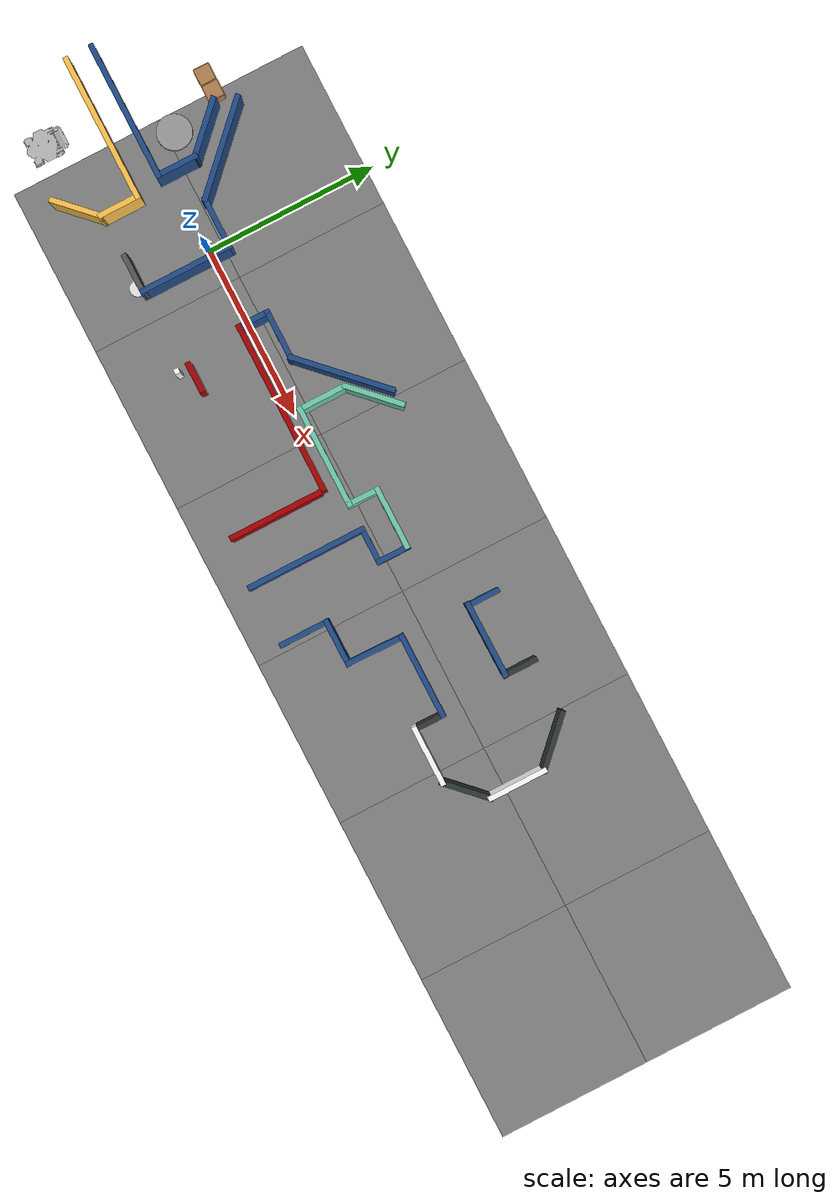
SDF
<sdf version="1.7">
 <world name="default">
  <model name="among_us_world">
   <pose>0.133216 -0.12311 0 0 -0 0</pose>
   <link name="Wall_104">
    <collision name="Wall_104_Collision">
     <geometry><box><size>4 0.15 2.5</size></box></geometry>
     <pose>0 0 1.25 0 -0 0</pose>
    </collision>
    <visual name="Wall_104_Visual">
     <pose>0 0 1.25 0 -0 0</pose>
     <geometry><box><size>4 0.15 2.5</size></box></geometry>
     <material>
      <ambient>0.12549 0.290196 0.529412 1</ambient>
      <diffuse>0.12549 0.290196 0.529412 1</diffuse>
      <specular>0.08 0.08 0.08 1</specular>
      <emissive>0 0 0 1</emissive>
      <pbr><metal><roughness>0.82</roughness><metalness>0</metalness></metal></pbr>
     </material>
     <meta><layer>0</layer></meta>
    </visual>
    <pose>-4.28169 -0.147272 0 0 -0 0</pose>
   </link>
   <link name="Wall_105">
    <collision name="Wall_105_Collision">
     <geometry><box><size>1.25 0.15 2.5</size></box></geometry>
     <pose>0 0 1.25 0 -0 0</pose>
    </collision>
    <visual name="Wall_105_Visual">
     <pose>0 0 1.25 0 -0 0</pose>
     <geometry><box><size>1.25 0.15 2.5</size></box></geometry>
     <material>
      <ambient>0.12549 0.290196 0.529412 1</ambient>
      <diffuse>0.12549 0.290196 0.529412 1</diffuse>
      <specular>0.08 0.08 0.08 1</specular>
      <emissive>0 0 0 1</emissive>
      <pbr><metal><roughness>0.82</roughness><metalness>0</metalness></metal></pbr>
     </material>
     <meta><layer>0</layer></meta>
    </visual>
    <pose>-2.35669 0.402728 0 0 -0 1.5708</pose>
   </link>
   <link name="Wall_106">
    <collision name="Wall_106_Collision">
     <geometry><box><size>1.75 0.15 2.5</size></box></geometry>
     <pose>0 0 1.25 0 -0 0</pose>
    </collision>
    <visual name="Wall_106_Visual">
     <pose>0 0 1.25 0 -0 0</pose>
     <geometry><box><size>1.75 0.15 2.5</size></box></geometry>
     <material>
      <ambient>0.12549 0.290196 0.529412 1</ambient>
      <diffuse>0.12549 0.290196 0.529412 1</diffuse>
      <specular>0.08 0.08 0.08 1</specular>
      <emissive>0 0 0 1</emissive>
      <pbr><metal><roughness>0.82</roughness><metalness>0</metalness></metal></pbr>
     </material>
     <meta><layer>0</layer></meta>
    </visual>
    <pose>-2.92238 1.51841 0 0 -0 2.35619</pose>
   </link>
   <link name="Wall_114">
    <collision name="Wall_114_Collision">
     <geometry><box><size>3 0.15 2.5</size></box></geometry>
     <pose>0 0 1.25 0 -0 0</pose>
    </collision>
    <visual name="Wall_114_Visual">
     <pose>0 0 1.25 0 -0 0</pose>
     <geometry><box><size>3 0.15 2.5</size></box></geometry>
     <material>
      <ambient>0.12549 0.290196 0.529412 1</ambient>
      <diffuse>0.12549 0.290196 0.529412 1</diffuse>
      <specular>0.08 0.08 0.08 1</specular>
      <emissive>0 0 0 1</emissive>
      <pbr><metal><roughness>0.82</roughness><metalness>0</metalness></metal></pbr>
     </material>
     <meta><layer>0</layer></meta>
    </visual>
    <pose>-2.23043 1.67647 0 0 -0 -0.785398</pose>
   </link>
   <link name="Wall_115">
    <collision name="Wall_115_Collision">
     <geometry><box><size>1.5655 0.15 2.5</size></box></geometry>
     <pose>0 0 1.25 0 -0 0</pose>
    </collision>
    <visual name="Wall_115_Visual">
     <pose>0 0 1.25 0 -0 0</pose>
     <geometry><box><size>1.5655 0.15 2.5</size></box></geometry>
     <material>
      <ambient>0.12549 0.290196 0.529412 1</ambient>
      <diffuse>0.12549 0.290196 0.529412 1</diffuse>
      <specular>0.08 0.08 0.08 1</specular>
      <emissive>0 0 0 1</emissive>
      <pbr><metal><roughness>0.82</roughness><metalness>0</metalness></metal></pbr>
     </material>
     <meta><layer>0</layer></meta>
    </visual>
    <pose>-0.515099 0.662156 0 0 -0 -0.00945</pose>
   </link>
   <link name="Wall_116">
    <collision name="Wall_116_Collision">
     <geometry><box><size>2.75 0.15 2.5</size></box></geometry>
     <pose>0 0 1.25 0 -0 0</pose>
    </collision>
    <visual name="Wall_116_Visual">
     <pose>0 0 1.25 0 -0 0</pose>
     <geometry><box><size>2.75 0.15 2.5</size></box></geometry>
     <material>
      <ambient>0.12549 0.290196 0.529412 1</ambient>
      <diffuse>0.12549 0.290196 0.529412 1</diffuse>
      <specular>0.08 0.08 0.08 1</specular>
      <emissive>0 0 0 1</emissive>
      <pbr><metal><roughness>0.82</roughness><metalness>0</metalness></metal></pbr>
     </material>
     <meta><layer>0</layer></meta>
    </visual>
    <pose>0.19261 -0.637844 0 0 -0 -1.5708</pose>
   </link>
   <link name="Wall_128">
    <collision name="Wall_128_Collision">
     <geometry><box><size>1.75 0.15 2.5</size></box></geometry>
     <pose>0 0 1.25 0 -0 0</pose>
    </collision>
    <visual name="Wall_128_Visual">
     <pose>0 0 1.25 0 -0 0</pose>
     <geometry><box><size>1.75 0.15 2.5</size></box></geometry>
     <material>
      <ambient>0.435294 0.796078 0.67451 1</ambient>
      <diffuse>0.435294 0.796078 0.67451 1</diffuse>
      <specular>0.08 0.08 0.08 1</specular>
      <emissive>0 0 0 1</emissive>
      <pbr><metal><roughness>0.82</roughness><metalness>0</metalness></metal></pbr>
     </material>
     <meta><layer>0</layer></meta>
    </visual>
    <pose>5.47138 2.24804 0 0 -0 -2.35619</pose>
   </link>
   <link name="Wall_129">
    <collision name="Wall_129_Collision">
     <geometry><box><size>1.5 0.15 2.5</size></box></geometry>
     <pose>0 0 1.25 0 -0 0</pose>
    </collision>
    <visual name="Wall_129_Visual">
     <pose>0 0 1.25 0 -0 0</pose>
     <geometry><box><size>1.5 0.15 2.5</size></box></geometry>
     <material>
      <ambient>0.435294 0.796078 0.67451 1</ambient>
      <diffuse>0.435294 0.796078 0.67451 1</diffuse>
      <specular>0.08 0.08 0.08 1</specular>
      <emissive>0 0 0 1</emissive>
      <pbr><metal><roughness>0.82</roughness><metalness>0</metalness></metal></pbr>
     </material>
     <meta><layer>0</layer></meta>
    </visual>
    <pose>4.9057 1.00735 0 0 -0 -1.5708</pose>
   </link>
   <link name="Wall_13">
    <collision name="Wall_13_Collision">
     <geometry><box><size>0.99953 0.15 2.5</size></box></geometry>
     <pose>0 0 1.25 0 -0 0</pose>
    </collision>
    <visual name="Wall_13_Visual">
     <pose>0 0 1.25 0 -0 0</pose>
     <geometry><box><size>0.99953 0.15 2.5</size></box></geometry>
     <material>
      <ambient>0.12549 0.290196 0.529412 1</ambient>
      <diffuse>0.12549 0.290196 0.529412 1</diffuse>
      <specular>0.08 0.08 0.08 1</specular>
      <emissive>0 0 0 1</emissive>
      <pbr><metal><roughness>0.82</roughness><metalness>0</metalness></metal></pbr>
     </material>
     <meta><layer>0</layer></meta>
    </visual>
    <pose>11.6124 2.34037 0 0 -0 -1.5708</pose>
   </link>
   <link name="Wall_130">
    <collision name="Wall_130_Collision">
     <geometry><box><size>3 0.15 2.5</size></box></geometry>
     <pose>0 0 1.25 0 -0 0</pose>
    </collision>
    <visual name="Wall_130_Visual">
     <pose>0 0 1.25 0 -0 0</pose>
     <geometry><box><size>3 0.15 2.5</size></box></geometry>
     <material>
      <ambient>0.435294 0.796078 0.67451 1</ambient>
      <diffuse>0.435294 0.796078 0.67451 1</diffuse>
      <specular>0.08 0.08 0.08 1</specular>
      <emissive>0 0 0 1</emissive>
      <pbr><metal><roughness>0.82</roughness><metalness>0</metalness></metal></pbr>
     </material>
     <meta><layer>0</layer></meta>
    </visual>
    <pose>6.3307 0.332351 0 0 -0 0</pose>
   </link>
   <link name="Wall_131">
    <collision name="Wall_131_Collision">
     <geometry><box><size>1 0.15 2.5</size></box></geometry>
     <pose>0 0 1.25 0 -0 0</pose>
    </collision>
    <visual name="Wall_131_Visual">
     <pose>0 0 1.25 0 -0 0</pose>
     <geometry><box><size>1 0.15 2.5</size></box></geometry>
     <material>
      <ambient>0.435294 0.796078 0.67451 1</ambient>
      <diffuse>0.435294 0.796078 0.67451 1</diffuse>
      <specular>0.08 0.08 0.08 1</specular>
      <emissive>0 0 0 1</emissive>
      <pbr><metal><roughness>0.82</roughness><metalness>0</metalness></metal></pbr>
     </material>
     <meta><layer>0</layer></meta>
    </visual>
    <pose>7.7557 0.757351 0 0 -0 1.5708</pose>
   </link>
   <link name="Wall_132">
    <collision name="Wall_132_Collision">
     <geometry><box><size>1.85593 0.15 2.5</size></box></geometry>
     <pose>0 0 1.25 0 -0 0</pose>
    </collision>
    <visual name="Wall_132_Visual">
     <pose>0 0 1.25 0 -0 0</pose>
     <geometry><box><size>1.85593 0.15 2.5</size></box></geometry>
     <material>
      <ambient>0.435294 0.796078 0.67451 1</ambient>
      <diffuse>0.435294 0.796078 0.67451 1</diffuse>
      <specular>0.08 0.08 0.08 1</specular>
      <emissive>0 0 0 1</emissive>
      <pbr><metal><roughness>0.82</roughness><metalness>0</metalness></metal></pbr>
     </material>
     <meta><layer>0</layer></meta>
    </visual>
    <pose>8.60867 1.18235 0 0 -0 0</pose>
   </link>
   <link name="Wall_133">
    <collision name="Wall_133_Collision">
     <geometry><box><size>1 0.15 2.5</size></box></geometry>
     <pose>0 0 1.25 0 -0 0</pose>
    </collision>
    <visual name="Wall_133_Visual">
     <pose>0 0 1.25 0 -0 0</pose>
     <geometry><box><size>1 0.15 2.5</size></box></geometry>
     <material>
      <ambient>0.12549 0.290196 0.529412 1</ambient>
      <diffuse>0.12549 0.290196 0.529412 1</diffuse>
      <specular>0.08 0.08 0.08 1</specular>
      <emissive>0 0 0 1</emissive>
      <pbr><metal><roughness>0.82</roughness><metalness>0</metalness></metal></pbr>
     </material>
     <meta><layer>0</layer></meta>
    </visual>
    <pose>9.47952 0.757351 0 0 -0 -1.5708</pose>
   </link>
   <link name="Wall_134">
    <collision name="Wall_134_Collision">
     <geometry><box><size>1.10593 0.15 2.5</size></box></geometry>
     <pose>0 0 1.25 0 -0 0</pose>
    </collision>
    <visual name="Wall_134_Visual">
     <pose>0 0 1.25 0 -0 0</pose>
     <geometry><box><size>1.10593 0.15 2.5</size></box></geometry>
     <material>
      <ambient>0.12549 0.290196 0.529412 1</ambient>
      <diffuse>0.12549 0.290196 0.529412 1</diffuse>
      <specular>0.08 0.08 0.08 1</specular>
      <emissive>0 0 0 1</emissive>
      <pbr><metal><roughness>0.82</roughness><metalness>0</metalness></metal></pbr>
     </material>
     <meta><layer>0</layer></meta>
    </visual>
    <pose>8.98367 0.332351 0 0 -0 3.14159</pose>
   </link>
   <link name="Wall_135">
    <collision name="Wall_135_Collision">
     <geometry><box><size>3.5 0.15 2.5</size></box></geometry>
     <pose>0 0 1.25 0 -0 0</pose>
    </collision>
    <visual name="Wall_135_Visual">
     <pose>0 0 1.25 0 -0 0</pose>
     <geometry><box><size>3.5 0.15 2.5</size></box></geometry>
     <material>
      <ambient>0.12549 0.290196 0.529412 1</ambient>
      <diffuse>0.12549 0.290196 0.529412 1</diffuse>
      <specular>0.08 0.08 0.08 1</specular>
      <emissive>0 0 0 1</emissive>
      <pbr><metal><roughness>0.82</roughness><metalness>0</metalness></metal></pbr>
     </material>
     <meta><layer>0</layer></meta>
    </visual>
    <pose>8.5057 -1.34265 0 0 -0 -1.5708</pose>
   </link>
   <link name="Wall_14">
    <collision name="Wall_14_Collision">
     <geometry><box><size>2.25007 0.15 2.5</size></box></geometry>
     <pose>0 0 1.25 0 -0 0</pose>
    </collision>
    <visual name="Wall_14_Visual">
     <pose>0 0 1.25 0 -0 0</pose>
     <geometry><box><size>2.25007 0.15 2.5</size></box></geometry>
     <material>
      <ambient>0.12549 0.290196 0.529412 1</ambient>
      <diffuse>0.12549 0.290196 0.529412 1</diffuse>
      <specular>0.08 0.08 0.08 1</specular>
      <emissive>0 0 0 1</emissive>
      <pbr><metal><roughness>0.82</roughness><metalness>0</metalness></metal></pbr>
     </material>
     <meta><layer>0</layer></meta>
    </visual>
    <pose>12.6445 1.92431 0 0 -0 0.008281</pose>
   </link>
   <link name="Wall_146">
    <collision name="Wall_146_Collision">
     <geometry><box><size>4.25 0.15 2.5</size></box></geometry>
     <pose>0 0 1.25 0 -0 0</pose>
    </collision>
    <visual name="Wall_146_Visual">
     <pose>0 0 1.25 0 -0 0</pose>
     <geometry><box><size>4.25 0.15 2.5</size></box></geometry>
     <material>
      <ambient>1 0.764706 0.305882 1</ambient>
      <diffuse>1 0.764706 0.305882 1</diffuse>
      <specular>0.08 0.08 0.08 1</specular>
      <emissive>0 0 0 1</emissive>
      <pbr><metal><roughness>0.82</roughness><metalness>0</metalness></metal></pbr>
     </material>
     <meta><layer>0</layer></meta>
    </visual>
    <pose>-4.16277 -0.905283 0 0 -0 0</pose>
   </link>
   <link name="Wall_147">
    <collision name="Wall_147_Collision">
     <geometry><box><size>1.25 0.15 2.5</size></box></geometry>
     <pose>0 0 1.25 0 -0 0</pose>
    </collision>
    <visual name="Wall_147_Visual">
     <pose>0 0 1.25 0 -0 0</pose>
     <geometry><box><size>1.25 0.15 2.5</size></box></geometry>
     <material>
      <ambient>1 0.764706 0.305882 1</ambient>
      <diffuse>1 0.764706 0.305882 1</diffuse>
      <specular>0.08 0.08 0.08 1</specular>
      <emissive>0 0 0 1</emissive>
      <pbr><metal><roughness>0.82</roughness><metalness>0</metalness></metal></pbr>
     </material>
     <meta><layer>0</layer></meta>
    </visual>
    <pose>-2.11277 -1.45528 0 0 -0 -1.5708</pose>
   </link>
   <link name="Wall_148">
    <collision name="Wall_148_Collision">
     <geometry><box><size>1.5 0.15 2.5</size></box></geometry>
     <pose>0 0 1.25 0 -0 0</pose>
    </collision>
    <visual name="Wall_148_Visual">
     <pose>0 0 1.25 0 -0 0</pose>
     <geometry><box><size>1.5 0.15 2.5</size></box></geometry>
     <material>
      <ambient>1 0.764706 0.305882 1</ambient>
      <diffuse>1 0.764706 0.305882 1</diffuse>
      <specular>0.08 0.08 0.08 1</specular>
      <emissive>0 0 0 1</emissive>
      <pbr><metal><roughness>0.82</roughness><metalness>0</metalness></metal></pbr>
     </material>
     <meta><layer>0</layer></meta>
    </visual>
    <pose>-2.59027 -2.48228 0 0 -0 -2.35672</pose>
   </link>
   <link name="Wall_15">
    <collision name="Wall_15_Collision">
     <geometry><box><size>1.02562 0.15 2.5</size></box></geometry>
     <pose>0 0 1.25 0 -0 0</pose>
    </collision>
    <visual name="Wall_15_Visual">
     <pose>0 0 1.25 0 -0 0</pose>
     <geometry><box><size>1.02562 0.15 2.5</size></box></geometry>
     <material>
      <ambient>0.180392 0.203922 0.211765 1</ambient>
      <diffuse>0.180392 0.203922 0.211765 1</diffuse>
      <specular>0.08 0.08 0.08 1</specular>
      <emissive>0 0 0 1</emissive>
      <pbr><metal><roughness>0.82</roughness><metalness>0</metalness></metal></pbr>
     </material>
     <meta><layer>0</layer></meta>
    </visual>
    <pose>13.7124 2.37081 0 0 -0 1.5708</pose>
   </link>
   <link name="Wall_180">
    <collision name="Wall_180_Collision">
     <geometry><box><size>3 0.15 2.5</size></box></geometry>
     <pose>0 0 1.25 0 -0 0</pose>
    </collision>
    <visual name="Wall_180_Visual">
     <pose>0 0 1.25 0 -0 0</pose>
     <geometry><box><size>3 0.15 2.5</size></box></geometry>
     <material>
      <ambient>0.12549 0.290196 0.529412 1</ambient>
      <diffuse>0.12549 0.290196 0.529412 1</diffuse>
      <specular>0.08 0.08 0.08 1</specular>
      <emissive>0 0 0 1</emissive>
      <pbr><metal><roughness>0.82</roughness><metalness>0</metalness></metal></pbr>
     </material>
     <meta><layer>0</layer></meta>
    </visual>
    <pose>4.57485 1.76069 0 0 -0 -2.35619</pose>
   </link>
   <link name="Wall_183">
    <collision name="Wall_183_Collision">
     <geometry><box><size>1.5 0.15 2.5</size></box></geometry>
     <pose>0 0 1.25 0 -0 0</pose>
    </collision>
    <visual name="Wall_183_Visual">
     <pose>0 0 1.25 0 -0 0</pose>
     <geometry><box><size>1.5 0.15 2.5</size></box></geometry>
     <material>
      <ambient>0.12549 0.290196 0.529412 1</ambient>
      <diffuse>0.12549 0.290196 0.529412 1</diffuse>
      <specular>0.08 0.08 0.08 1</specular>
      <emissive>0 0 0 1</emissive>
      <pbr><metal><roughness>0.82</roughness><metalness>0</metalness></metal></pbr>
     </material>
     <meta><layer>0</layer></meta>
    </visual>
    <pose>2.89222 0.753062 0 0 -0 3.14159</pose>
   </link>
   <link name="Wall_184">
    <collision name="Wall_184_Collision">
     <geometry><box><size>1 0.15 2.5</size></box></geometry>
     <pose>0 0 1.25 0 -0 0</pose>
    </collision>
    <visual name="Wall_184_Visual">
     <pose>0 0 1.25 0 -0 0</pose>
     <geometry><box><size>1 0.15 2.5</size></box></geometry>
     <material>
      <ambient>0.12549 0.290196 0.529412 1</ambient>
      <diffuse>0.12549 0.290196 0.529412 1</diffuse>
      <specular>0.08 0.08 0.08 1</specular>
      <emissive>0 0 0 1</emissive>
      <pbr><metal><roughness>0.82</roughness><metalness>0</metalness></metal></pbr>
     </material>
     <meta><layer>0</layer></meta>
    </visual>
    <pose>2.21722 0.328062 0 0 -0 -1.5708</pose>
   </link>
   <link name="Wall_185">
    <collision name="Wall_185_Collision">
     <geometry><box><size>5 0.15 2.5</size></box></geometry>
     <pose>0 0 1.25 0 -0 0</pose>
    </collision>
    <visual name="Wall_185_Visual">
     <pose>0 0 1.25 0 -0 0</pose>
     <geometry><box><size>5 0.15 2.5</size></box></geometry>
     <material>
      <ambient>0.643137 0 0 1</ambient>
      <diffuse>0.643137 0 0 1</diffuse>
      <specular>0.08 0.08 0.08 1</specular>
      <emissive>0 0 0 1</emissive>
      <pbr><metal><roughness>0.82</roughness><metalness>0</metalness></metal></pbr>
     </material>
     <meta><layer>0</layer></meta>
    </visual>
    <pose>4.64222 -0.096938 0 0 -0 0</pose>
   </link>
   <link name="Wall_189">
    <collision name="Wall_189_Collision">
     <geometry><box><size>0.892418 0.15 2.5</size></box></geometry>
     <pose>0 0 1.25 0 -0 0</pose>
    </collision>
    <visual name="Wall_189_Visual">
     <pose>0 0 1.25 0 -0 0</pose>
     <geometry><box><size>0.892418 0.15 2.5</size></box></geometry>
     <material>
      <ambient>0.643137 0 0 1</ambient>
      <diffuse>0.643137 0 0 1</diffuse>
      <specular>0.08 0.08 0.08 1</specular>
      <emissive>0 0 0 1</emissive>
      <pbr><metal><roughness>0.82</roughness><metalness>0</metalness></metal></pbr>
     </material>
     <meta><layer>0</layer></meta>
    </visual>
    <pose>2.86737 -1.75991 0 0 -0 -0.009059</pose>
   </link>
   <link name="Wall_193">
    <collision name="Wall_193_Collision">
     <geometry><box><size>2.75 0.15 2.5</size></box></geometry>
     <pose>0 0 1.25 0 -0 0</pose>
    </collision>
    <visual name="Wall_193_Visual">
     <pose>0 0 1.25 0 -0 0</pose>
     <geometry><box><size>2.75 0.15 2.5</size></box></geometry>
     <material>
      <ambient>0.643137 0 0 1</ambient>
      <diffuse>0.643137 0 0 1</diffuse>
      <specular>0.08 0.08 0.08 1</specular>
      <emissive>0 0 0 1</emissive>
      <pbr><metal><roughness>0.82</roughness><metalness>0</metalness></metal></pbr>
     </material>
     <meta><layer>0</layer></meta>
    </visual>
    <pose>7.11638 -1.53545 0 0 -0 1.5708</pose>
   </link>
   <link name="Wall_20">
    <collision name="Wall_20_Collision">
     <geometry><box><size>1.75 0.15 2.5</size></box></geometry>
     <pose>0 0 1.25 0 -0 0</pose>
    </collision>
    <visual name="Wall_20_Visual">
     <pose>0 0 1.25 0 -0 0</pose>
     <geometry><box><size>1.75 0.15 2.5</size></box></geometry>
     <material>
      <ambient>0.180392 0.203922 0.211765 1</ambient>
      <diffuse>0.180392 0.203922 0.211765 1</diffuse>
      <specular>0.08 0.08 0.08 1</specular>
      <emissive>0 0 0 1</emissive>
      <pbr><metal><roughness>0.82</roughness><metalness>0</metalness></metal></pbr>
     </material>
     <meta><layer>0</layer></meta>
    </visual>
    <pose>15.8781 2.24293 0 0 -0 -0.785398</pose>
   </link>
   <link name="Wall_204">
    <collision name="Wall_204_Collision">
     <geometry><box><size>1.18966 0.15 2.5</size></box></geometry>
     <pose>0 0 1.25 0 -0 0</pose>
    </collision>
    <visual name="Wall_204_Visual">
     <pose>0 0 1.25 0 -0 0</pose>
     <geometry><box><size>1.18966 0.15 2.5</size></box></geometry>
     <material>
      <ambient>0.333333 0.341176 0.32549 1</ambient>
      <diffuse>0.333333 0.341176 0.32549 1</diffuse>
      <specular>0.08 0.08 0.08 1</specular>
      <emissive>0 0 0 1</emissive>
      <pbr><metal><roughness>0.82</roughness><metalness>0</metalness></metal></pbr>
     </material>
     <meta><layer>0</layer></meta>
    </visual>
    <pose>-0.32722 -1.93701 0 0 -0 3.14</pose>
   </link>
   <link name="Wall_21">
    <collision name="Wall_21_Collision">
     <geometry><box><size>1.75 0.15 2.5</size></box></geometry>
     <pose>0 0 1.25 0 -0 0</pose>
    </collision>
    <visual name="Wall_21_Visual">
     <pose>0 0 1.25 0 -0 0</pose>
     <geometry><box><size>1.75 0.15 2.5</size></box></geometry>
     <material>
      <ambient>1 1 1 1</ambient>
      <diffuse>1 1 1 1</diffuse>
      <specular>0.08 0.08 0.08 1</specular>
      <emissive>0 0 0 1</emissive>
      <pbr><metal><roughness>0.82</roughness><metalness>0</metalness></metal></pbr>
     </material>
     <meta><layer>0</layer></meta>
    </visual>
    <pose>16.4438 0.877247 0 0 -0 -1.5708</pose>
   </link>
   <link name="Wall_211">
    <collision name="Wall_211_Collision">
     <geometry><box><size>0.15 0.15 2.5</size></box></geometry>
     <pose>0 0 1.25 0 -0 0</pose>
    </collision>
    <visual name="Wall_211_Visual">
     <pose>0 0 1.25 0 -0 0</pose>
     <geometry><box><size>0.15 0.15 2.5</size></box></geometry>
     <material>
      <ambient>1 1 1 1</ambient>
      <diffuse>1 1 1 1</diffuse>
      <specular>0.08 0.08 0.08 1</specular>
      <emissive>0 0 0 1</emissive>
      <pbr><metal><roughness>0.82</roughness><metalness>0</metalness></metal></pbr>
     </material>
     <meta><layer>0</layer></meta>
    </visual>
    <pose>2.50201 -2.11327 0 0 -0 0</pose>
   </link>
   <link name="Wall_22">
    <collision name="Wall_22_Collision">
     <geometry><box><size>1.5 0.15 2.5</size></box></geometry>
     <pose>0 0 1.25 0 -0 0</pose>
    </collision>
    <visual name="Wall_22_Visual">
     <pose>0 0 1.25 0 -0 0</pose>
     <geometry><box><size>1.5 0.15 2.5</size></box></geometry>
     <material>
      <ambient>0.180392 0.203922 0.211765 1</ambient>
      <diffuse>0.180392 0.203922 0.211765 1</diffuse>
      <specular>0.08 0.08 0.08 1</specular>
      <emissive>0 0 0 1</emissive>
      <pbr><metal><roughness>0.82</roughness><metalness>0</metalness></metal></pbr>
     </material>
     <meta><layer>0</layer></meta>
    </visual>
    <pose>15.9665 -0.40005 0 0 -0 -2.35619</pose>
   </link>
   <link name="Wall_23">
    <collision name="Wall_23_Collision">
     <geometry><box><size>1.75 0.15 2.5</size></box></geometry>
     <pose>0 0 1.25 0 -0 0</pose>
    </collision>
    <visual name="Wall_23_Visual">
     <pose>0 0 1.25 0 -0 0</pose>
     <geometry><box><size>1.75 0.15 2.5</size></box></geometry>
     <material>
      <ambient>1 1 1 1</ambient>
      <diffuse>1 1 1 1</diffuse>
      <specular>0.08 0.08 0.08 1</specular>
      <emissive>0 0 0 1</emissive>
      <pbr><metal><roughness>0.82</roughness><metalness>0</metalness></metal></pbr>
     </material>
     <meta><layer>0</layer></meta>
    </visual>
    <pose>14.6892 -0.877347 0 0 -0 3.14159</pose>
   </link>
   <link name="Wall_24">
    <collision name="Wall_24_Collision">
     <geometry><box><size>0.963748 0.15 2.5</size></box></geometry>
     <pose>0 0 1.25 0 -0 0</pose>
    </collision>
    <visual name="Wall_24_Visual">
     <pose>0 0 1.25 0 -0 0</pose>
     <geometry><box><size>0.963748 0.15 2.5</size></box></geometry>
     <material>
      <ambient>0.180392 0.203922 0.211765 1</ambient>
      <diffuse>0.180392 0.203922 0.211765 1</diffuse>
      <specular>0.08 0.08 0.08 1</specular>
      <emissive>0 0 0 1</emissive>
      <pbr><metal><roughness>0.82</roughness><metalness>0</metalness></metal></pbr>
     </material>
     <meta><layer>0</layer></meta>
    </visual>
    <pose>13.8892 -0.470473 0 0 -0 1.5708</pose>
   </link>
   <link name="Wall_25">
    <collision name="Wall_25_Collision">
     <geometry><box><size>2.5 0.15 2.5</size></box></geometry>
     <pose>0 0 1.25 0 -0 0</pose>
    </collision>
    <visual name="Wall_25_Visual">
     <pose>0 0 1.25 0 -0 0</pose>
     <geometry><box><size>2.5 0.15 2.5</size></box></geometry>
     <material>
      <ambient>0.12549 0.290196 0.529412 1</ambient>
      <diffuse>0.12549 0.290196 0.529412 1</diffuse>
      <specular>0.08 0.08 0.08 1</specular>
      <emissive>0 0 0 1</emissive>
      <pbr><metal><roughness>0.82</roughness><metalness>0</metalness></metal></pbr>
     </material>
     <meta><layer>0</layer></meta>
    </visual>
    <pose>12.7142 -0.045708 0 0 -0 3.14159</pose>
   </link>
   <link name="Wall_26">
    <collision name="Wall_26_Collision">
     <geometry><box><size>1.73416 0.15 2.5</size></box></geometry>
     <pose>0 0 1.25 0 -0 0</pose>
    </collision>
    <visual name="Wall_26_Visual">
     <pose>0 0 1.25 0 -0 0</pose>
     <geometry><box><size>1.73416 0.15 2.5</size></box></geometry>
     <material>
      <ambient>0.12549 0.290196 0.529412 1</ambient>
      <diffuse>0.12549 0.290196 0.529412 1</diffuse>
      <specular>0.08 0.08 0.08 1</specular>
      <emissive>0 0 0 1</emissive>
      <pbr><metal><roughness>0.82</roughness><metalness>0</metalness></metal></pbr>
     </material>
     <meta><layer>0</layer></meta>
    </visual>
    <pose>11.5256 -0.855562 0 0 -0 -1.58788</pose>
   </link>
   <link name="Wall_27">
    <collision name="Wall_27_Collision">
     <geometry><box><size>1.40477 0.15 2.5</size></box></geometry>
     <pose>0 0 1.25 0 -0 0</pose>
    </collision>
    <visual name="Wall_27_Visual">
     <pose>0 0 1.25 0 -0 0</pose>
     <geometry><box><size>1.40477 0.15 2.5</size></box></geometry>
     <material>
      <ambient>0.12549 0.290196 0.529412 1</ambient>
      <diffuse>0.12549 0.290196 0.529412 1</diffuse>
      <specular>0.08 0.08 0.08 1</specular>
      <emissive>0 0 0 1</emissive>
      <pbr><metal><roughness>0.82</roughness><metalness>0</metalness></metal></pbr>
     </material>
     <meta><layer>0</layer></meta>
    </visual>
    <pose>10.8914 -1.64752 0 0 -0 3.14159</pose>
   </link>
   <link name="Wall_89">
    <collision name="Wall_89_Collision">
     <geometry><box><size>1.47984 0.15 2.5</size></box></geometry>
     <pose>0 0 1.25 0 -0 0</pose>
    </collision>
    <visual name="Wall_89_Visual">
     <pose>0 0 1.25 0 -0 0</pose>
     <geometry><box><size>1.47984 0.15 2.5</size></box></geometry>
     <material>
      <ambient>0.12549 0.290196 0.529412 1</ambient>
      <diffuse>0.12549 0.290196 0.529412 1</diffuse>
      <specular>0.08 0.08 0.08 1</specular>
      <emissive>0 0 0 1</emissive>
      <pbr><metal><roughness>0.82</roughness><metalness>0</metalness></metal></pbr>
     </material>
     <meta><layer>0</layer></meta>
    </visual>
    <pose>10.2573 -2.31244 0 0 -0 -1.5708</pose>
   </link>
   <static>1</static>
  </model>
  <model name="mars_rover">
   <static>1</static>
   <link name="link">
    <collision name="solar_panel_collision">
     <pose>0 -0.06945 0.47293 0 -0 0</pose>
     <geometry><box><size>0.87974 0.8821 0.02602</size></box></geometry>
    </collision>
    <collision name="chassis_collision">
     <pose>0 -0.05 0.31475 0 -0 0</pose>
     <geometry><box><size>0.49522 0.67401 0.28915</size></box></geometry>
    </collision>
    <collision name="rear_left_bumper_collision">
     <pose>0.30107 0.3835 0.38976 0 -0 0</pose>
     <geometry><box><size>0.04442 0.38897 0.07918</size></box></geometry>
    </collision>
    <collision name="rear_right_bumper_collision">
     <pose>-0.30107 0.3835 0.38976 0 -0 0</pose>
     <geometry><box><size>0.04442 0.38897 0.07918</size></box></geometry>
    </collision>
    <collision name="rear_bumper_collision">
     <pose>0 0.59414 0.38976 0 -0 0</pose>
     <geometry><box><size>0.56656 0.04442 0.07918</size></box></geometry>
    </collision>
    <collision name="bin_back_panel_collision">
     <pose>0 0.47 0.32114 0.69137 -0 0</pose>
     <geometry><box><size>0.43774 0.212366 0.05173</size></box></geometry>
    </collision>
    <collision name="bin_left_panel_collision1">
     <pose>0.22615 0.32897 0.33193 0 -0 0</pose>
     <geometry><box><size>0.01116 0.19338 0.16304</size></box></geometry>
    </collision>
    <collision name="bin_left_panel_collision2">
     <pose>0.22615 0.471 0.39308 0 -0 0</pose>
     <geometry><box><size>0.01116 0.15 0.04</size></box></geometry>
    </collision>
    <collision name="bin_left_panel_collision3">
     <pose>0.22615 0.45 0.35308 0 -0 0</pose>
     <geometry><box><size>0.01116 0.15 0.04</size></box></geometry>
    </collision>
    <collision name="bin_left_panel_collision4">
     <pose>0.22615 0.39308 0.31308 0 -0 0</pose>
     <geometry><box><size>0.01116 0.15 0.04</size></box></geometry>
    </collision>
    <collision name="bin_right_panel_collision1">
     <pose>-0.22615 0.32897 0.33193 0 -0 0</pose>
     <geometry><box><size>0.01116 0.19338 0.16304</size></box></geometry>
    </collision>
    <collision name="bin_right_panel_collision2">
     <pose>-0.22615 0.471 0.39308 0 -0 0</pose>
     <geometry><box><size>0.01116 0.15 0.04</size></box></geometry>
    </collision>
    <collision name="bin_right_panel_collision3">
     <pose>-0.22615 0.45 0.35308 0 -0 0</pose>
     <geometry><box><size>0.01116 0.15 0.04</size></box></geometry>
    </collision>
    <collision name="bin_right_panel_collision4">
     <pose>-0.22615 0.39308 0.31308 0 -0 0</pose>
     <geometry><box><size>0.01116 0.15 0.04</size></box></geometry>
    </collision>
    <collision name="bin_front_panel_collision">
     <pose>0 0.30047 0.32114 2.26207 -0 0</pose>
     <geometry><box><size>0.43774 0.212366 0.05173</size></box></geometry>
    </collision>
    <collision name="front_left_wheel_collision">
     <pose>0.31103 -0.32115 0.1358 1.5707 0 1.5707</pose>
     <geometry><cylinder><radius>0.1358</radius><length>0.1641</length></cylinder></geometry>
    </collision>
    <collision name="front_right_wheel_collision">
     <pose>-0.31103 -0.32115 0.1358 1.5707 0 1.5707</pose>
     <geometry><cylinder><radius>0.1358</radius><length>0.1641</length></cylinder></geometry>
    </collision>
    <collision name="rear_left_wheel_collision">
     <pose>0.31103 0.28049 0.1358 1.5707 0 1.5707</pose>
     <geometry><cylinder><radius>0.1358</radius><length>0.1641</length></cylinder></geometry>
    </collision>
    <collision name="rear_right_wheel_collision">
     <pose>-0.31103 0.28049 0.1358 1.5707 0 1.5707</pose>
     <geometry><cylinder><radius>0.1358</radius><length>0.1641</length></cylinder></geometry>
    </collision>
    <visual name="visual">
     <geometry><mesh><uri>model://mars_rover/meshes/rover.dae</uri></mesh></geometry>
    </visual>
   </link>
   <pose>-4.55317 -2.65606 0 0 -0 0</pose>
  </model>
  <model name="asphalt_tile_03_04">
   <static>1</static>
   <pose>-1.400 -1.800 -0.020 0 -0 0</pose>
   <link name="link">
    <collision name="collision"><geometry><box><size>4.800 4.400 0.040</size></box></geometry></collision>
    <visual name="visual">
     <cast_shadows>0</cast_shadows>
     <geometry><box><size>4.800 4.400 0.040</size></box></geometry>
     <material>
      <ambient>0.5 0.5 0.5 1</ambient>
      <diffuse>0.5 0.5 0.5 1</diffuse>
      <specular>0.2 0.2 0.2 1</specular>
      <emissive>0 0 0 1</emissive>
      <pbr>
       <metal>
        <albedo_map>model://asphalt_plane/materials/textures/tarmac.png</albedo_map>
        <roughness>0.85</roughness>
        <metalness>0</metalness>
       </metal>
      </pbr>
     </material>
    </visual>
   </link>
  </model>
  <model name="asphalt_tile_03_05">
   <static>1</static>
   <pose>3.400 -1.800 -0.020 0 -0 0</pose>
   <link name="link">
    <collision name="collision"><geometry><box><size>4.800 4.400 0.040</size></box></geometry></collision>
    <visual name="visual">
     <cast_shadows>0</cast_shadows>
     <geometry><box><size>4.800 4.400 0.040</size></box></geometry>
     <material>
      <ambient>0.5 0.5 0.5 1</ambient>
      <diffuse>0.5 0.5 0.5 1</diffuse>
      <specular>0.2 0.2 0.2 1</specular>
      <emissive>0 0 0 1</emissive>
      <pbr>
       <metal>
        <albedo_map>model://asphalt_plane/materials/textures/tarmac.png</albedo_map>
        <roughness>0.85</roughness>
        <metalness>0</metalness>
       </metal>
      </pbr>
     </material>
    </visual>
   </link>
  </model>
  <model name="asphalt_tile_03_06">
   <static>1</static>
   <pose>8.200 -1.800 -0.020 0 -0 0</pose>
   <link name="link">
    <collision name="collision"><geometry><box><size>4.800 4.400 0.040</size></box></geometry></collision>
    <visual name="visual">
     <cast_shadows>0</cast_shadows>
     <geometry><box><size>4.800 4.400 0.040</size></box></geometry>
     <material>
      <ambient>0.5 0.5 0.5 1</ambient>
      <diffuse>0.5 0.5 0.5 1</diffuse>
      <specular>0.2 0.2 0.2 1</specular>
      <emissive>0 0 0 1</emissive>
      <pbr>
       <metal>
        <albedo_map>model://asphalt_plane/materials/textures/tarmac.png</albedo_map>
        <roughness>0.85</roughness>
        <metalness>0</metalness>
       </metal>
      </pbr>
     </material>
    </visual>
   </link>
  </model>
  <model name="asphalt_tile_03_07">
   <static>1</static>
   <pose>13.000 -1.800 -0.020 0 -0 0</pose>
   <link name="link">
    <collision name="collision"><geometry><box><size>4.800 4.400 0.040</size></box></geometry></collision>
    <visual name="visual">
     <cast_shadows>0</cast_shadows>
     <geometry><box><size>4.800 4.400 0.040</size></box></geometry>
     <material>
      <ambient>0.5 0.5 0.5 1</ambient>
      <diffuse>0.5 0.5 0.5 1</diffuse>
      <specular>0.2 0.2 0.2 1</specular>
      <emissive>0 0 0 1</emissive>
      <pbr>
       <metal>
        <albedo_map>model://asphalt_plane/materials/textures/tarmac.png</albedo_map>
        <roughness>0.85</roughness>
        <metalness>0</metalness>
       </metal>
      </pbr>
     </material>
    </visual>
   </link>
  </model>
  <model name="asphalt_tile_03_08">
   <static>1</static>
   <pose>17.800 -1.800 -0.020 0 -0 0</pose>
   <link name="link">
    <collision name="collision"><geometry><box><size>4.800 4.400 0.040</size></box></geometry></collision>
    <visual name="visual">
     <cast_shadows>0</cast_shadows>
     <geometry><box><size>4.800 4.400 0.040</size></box></geometry>
     <material>
      <ambient>0.5 0.5 0.5 1</ambient>
      <diffuse>0.5 0.5 0.5 1</diffuse>
      <specular>0.2 0.2 0.2 1</specular>
      <emissive>0 0 0 1</emissive>
      <pbr>
       <metal>
        <albedo_map>model://asphalt_plane/materials/textures/tarmac.png</albedo_map>
        <roughness>0.85</roughness>
        <metalness>0</metalness>
       </metal>
      </pbr>
     </material>
    </visual>
   </link>
  </model>
  <model name="asphalt_tile_03_09">
   <static>1</static>
   <pose>22.600 -1.800 -0.020 0 -0 0</pose>
   <link name="link">
    <collision name="collision"><geometry><box><size>4.800 4.400 0.040</size></box></geometry></collision>
    <visual name="visual">
     <cast_shadows>0</cast_shadows>
     <geometry><box><size>4.800 4.400 0.040</size></box></geometry>
     <material>
      <ambient>0.5 0.5 0.5 1</ambient>
      <diffuse>0.5 0.5 0.5 1</diffuse>
      <specular>0.2 0.2 0.2 1</specular>
      <emissive>0 0 0 1</emissive>
      <pbr>
       <metal>
        <albedo_map>model://asphalt_plane/materials/textures/tarmac.png</albedo_map>
        <roughness>0.85</roughness>
        <metalness>0</metalness>
       </metal>
      </pbr>
     </material>
    </visual>
   </link>
  </model>
  <model name="asphalt_tile_04_04">
   <static>1</static>
   <pose>-1.400 2.600 -0.020 0 -0 0</pose>
   <link name="link">
    <collision name="collision"><geometry><box><size>4.800 4.400 0.040</size></box></geometry></collision>
    <visual name="visual">
     <cast_shadows>0</cast_shadows>
     <geometry><box><size>4.800 4.400 0.040</size></box></geometry>
     <material>
      <ambient>0.5 0.5 0.5 1</ambient>
      <diffuse>0.5 0.5 0.5 1</diffuse>
      <specular>0.2 0.2 0.2 1</specular>
      <emissive>0 0 0 1</emissive>
      <pbr>
       <metal>
        <albedo_map>model://asphalt_plane/materials/textures/tarmac.png</albedo_map>
        <roughness>0.85</roughness>
        <metalness>0</metalness>
       </metal>
      </pbr>
     </material>
    </visual>
   </link>
  </model>
  <model name="asphalt_tile_04_05">
   <static>1</static>
   <pose>3.400 2.600 -0.020 0 -0 0</pose>
   <link name="link">
    <collision name="collision"><geometry><box><size>4.800 4.400 0.040</size></box></geometry></collision>
    <visual name="visual">
     <cast_shadows>0</cast_shadows>
     <geometry><box><size>4.800 4.400 0.040</size></box></geometry>
     <material>
      <ambient>0.5 0.5 0.5 1</ambient>
      <diffuse>0.5 0.5 0.5 1</diffuse>
      <specular>0.2 0.2 0.2 1</specular>
      <emissive>0 0 0 1</emissive>
      <pbr>
       <metal>
        <albedo_map>model://asphalt_plane/materials/textures/tarmac.png</albedo_map>
        <roughness>0.85</roughness>
        <metalness>0</metalness>
       </metal>
      </pbr>
     </material>
    </visual>
   </link>
  </model>
  <model name="asphalt_tile_04_06">
   <static>1</static>
   <pose>8.200 2.600 -0.020 0 -0 0</pose>
   <link name="link">
    <collision name="collision"><geometry><box><size>4.800 4.400 0.040</size></box></geometry></collision>
    <visual name="visual">
     <cast_shadows>0</cast_shadows>
     <geometry><box><size>4.800 4.400 0.040</size></box></geometry>
     <material>
      <ambient>0.5 0.5 0.5 1</ambient>
      <diffuse>0.5 0.5 0.5 1</diffuse>
      <specular>0.2 0.2 0.2 1</specular>
      <emissive>0 0 0 1</emissive>
      <pbr>
       <metal>
        <albedo_map>model://asphalt_plane/materials/textures/tarmac.png</albedo_map>
        <roughness>0.85</roughness>
        <metalness>0</metalness>
       </metal>
      </pbr>
     </material>
    </visual>
   </link>
  </model>
  <model name="asphalt_tile_04_07">
   <static>1</static>
   <pose>13.000 2.600 -0.020 0 -0 0</pose>
   <link name="link">
    <collision name="collision"><geometry><box><size>4.800 4.400 0.040</size></box></geometry></collision>
    <visual name="visual">
     <cast_shadows>0</cast_shadows>
     <geometry><box><size>4.800 4.400 0.040</size></box></geometry>
     <material>
      <ambient>0.5 0.5 0.5 1</ambient>
      <diffuse>0.5 0.5 0.5 1</diffuse>
      <specular>0.2 0.2 0.2 1</specular>
      <emissive>0 0 0 1</emissive>
      <pbr>
       <metal>
        <albedo_map>model://asphalt_plane/materials/textures/tarmac.png</albedo_map>
        <roughness>0.85</roughness>
        <metalness>0</metalness>
       </metal>
      </pbr>
     </material>
    </visual>
   </link>
  </model>
  <model name="asphalt_tile_04_08">
   <static>1</static>
   <pose>17.800 2.600 -0.020 0 -0 0</pose>
   <link name="link">
    <collision name="collision"><geometry><box><size>4.800 4.400 0.040</size></box></geometry></collision>
    <visual name="visual">
     <cast_shadows>0</cast_shadows>
     <geometry><box><size>4.800 4.400 0.040</size></box></geometry>
     <material>
      <ambient>0.5 0.5 0.5 1</ambient>
      <diffuse>0.5 0.5 0.5 1</diffuse>
      <specular>0.2 0.2 0.2 1</specular>
      <emissive>0 0 0 1</emissive>
      <pbr>
       <metal>
        <albedo_map>model://asphalt_plane/materials/textures/tarmac.png</albedo_map>
        <roughness>0.85</roughness>
        <metalness>0</metalness>
       </metal>
      </pbr>
     </material>
    </visual>
   </link>
  </model>
  <model name="asphalt_tile_04_09">
   <static>1</static>
   <pose>22.600 2.600 -0.020 0 -0 0</pose>
   <link name="link">
    <collision name="collision"><geometry><box><size>4.800 4.400 0.040</size></box></geometry></collision>
    <visual name="visual">
     <cast_shadows>0</cast_shadows>
     <geometry><box><size>4.800 4.400 0.040</size></box></geometry>
     <material>
      <ambient>0.5 0.5 0.5 1</ambient>
      <diffuse>0.5 0.5 0.5 1</diffuse>
      <specular>0.2 0.2 0.2 1</specular>
      <emissive>0 0 0 1</emissive>
      <pbr>
       <metal>
        <albedo_map>model://asphalt_plane/materials/textures/tarmac.png</albedo_map>
        <roughness>0.85</roughness>
        <metalness>0</metalness>
       </metal>
      </pbr>
     </material>
    </visual>
   </link>
  </model>
  <model name="cabinet">
   <static>1</static>
   <link name="cabinet_bottom_plate">
    <inertial>
     <pose>0 0 -1 0 -0 0</pose>
     <inertia><ixx>2.05</ixx><ixy>0</ixy><ixz>0</ixz><iyy>2.05</iyy><iyz>0</iyz><izz>2.05</izz></inertia>
     <mass>25</mass>
    </inertial>
    <collision name="cabinet_bottom_plate_geom">
     <pose>0 0 0.01 0 -0 0</pose>
     <geometry><box><size>0.45 0.45 0.02</size></box></geometry>
    </collision>
    <visual name="cabinet_bottom_plate_geom_visual">
     <pose>0 0 0.01 0 -0 0</pose>
     <geometry><box><size>0.45 0.45 0.02</size></box></geometry>
     <material>
      <script><uri>file://media/materials/scripts/gazebo.material</uri><name>Gazebo/Wood</name></script>
      <ambient>0.55 0.34 0.16 1</ambient>
      <diffuse>0.55 0.34 0.16 1</diffuse>
      <specular>0.08 0.08 0.08 1</specular>
      <emissive>0 0 0 1</emissive>
     </material>
    </visual>
    <collision name="cabinet_bottom_plate_geom_cabinet_back_plate">
     <pose>0.235 0 0.51 0 -0 0</pose>
     <geometry><box><size>0.02 0.45 1.02</size></box></geometry>
    </collision>
    <visual name="cabinet_bottom_plate_geom_cabinet_back_plate_visual">
     <pose>0.235 0 0.51 0 -0 0</pose>
     <geometry><box><size>0.02 0.45 1.02</size></box></geometry>
     <material>
      <script><uri>file://media/materials/scripts/gazebo.material</uri><name>Gazebo/Wood</name></script>
      <ambient>0.55 0.34 0.16 1</ambient>
      <diffuse>0.55 0.34 0.16 1</diffuse>
      <specular>0.08 0.08 0.08 1</specular>
      <emissive>0 0 0 1</emissive>
     </material>
    </visual>
    <collision name="cabinet_bottom_plate_geom_cabinet_left_plate">
     <pose>0 0.235 0.51 0 -0 0</pose>
     <geometry><box><size>0.45 0.02 1.02</size></box></geometry>
    </collision>
    <visual name="cabinet_bottom_plate_geom_cabinet_left_plate_visual">
     <pose>0 0.235 0.51 0 -0 0</pose>
     <geometry><box><size>0.45 0.02 1.02</size></box></geometry>
     <material>
      <script><uri>file://media/materials/scripts/gazebo.material</uri><name>Gazebo/Wood</name></script>
      <ambient>0.55 0.34 0.16 1</ambient>
      <diffuse>0.55 0.34 0.16 1</diffuse>
      <specular>0.08 0.08 0.08 1</specular>
      <emissive>0 0 0 1</emissive>
     </material>
    </visual>
    <collision name="cabinet_bottom_plate_geom_cabinet_middle_plate">
     <pose>0 0 0.51 0 -0 0</pose>
     <geometry><box><size>0.45 0.45 0.02</size></box></geometry>
    </collision>
    <visual name="cabinet_bottom_plate_geom_cabinet_middle_plate_visual">
     <pose>0 0 0.51 0 -0 0</pose>
     <geometry><box><size>0.45 0.45 0.02</size></box></geometry>
     <material>
      <script><uri>file://media/materials/scripts/gazebo.material</uri><name>Gazebo/Wood</name></script>
      <ambient>0.55 0.34 0.16 1</ambient>
      <diffuse>0.55 0.34 0.16 1</diffuse>
      <specular>0.08 0.08 0.08 1</specular>
      <emissive>0 0 0 1</emissive>
     </material>
    </visual>
    <collision name="cabinet_bottom_plate_geom_cabinet_right_plate">
     <pose>0 -0.235 0.51 0 -0 0</pose>
     <geometry><box><size>0.45 0.02 1.02</size></box></geometry>
    </collision>
    <visual name="cabinet_bottom_plate_geom_cabinet_right_plate_visual">
     <pose>0 -0.235 0.51 0 -0 0</pose>
     <geometry><box><size>0.45 0.02 1.02</size></box></geometry>
     <material>
      <script><uri>file://media/materials/scripts/gazebo.material</uri><name>Gazebo/Wood</name></script>
      <ambient>0.55 0.34 0.16 1</ambient>
      <diffuse>0.55 0.34 0.16 1</diffuse>
      <specular>0.08 0.08 0.08 1</specular>
      <emissive>0 0 0 1</emissive>
     </material>
    </visual>
    <collision name="cabinet_bottom_plate_geom_cabinet_top_plate">
     <pose>0 0 1.01 0 -0 0</pose>
     <geometry><box><size>0.45 0.45 0.02</size></box></geometry>
    </collision>
    <visual name="cabinet_bottom_plate_geom_cabinet_top_plate_visual">
     <pose>0 0 1.01 0 -0 0</pose>
     <geometry><box><size>0.45 0.45 0.02</size></box></geometry>
     <material>
      <script><uri>file://media/materials/scripts/gazebo.material</uri><name>Gazebo/Wood</name></script>
      <ambient>0.55 0.34 0.16 1</ambient>
      <diffuse>0.55 0.34 0.16 1</diffuse>
      <specular>0.08 0.08 0.08 1</specular>
      <emissive>0 0 0 1</emissive>
     </material>
    </visual>
   </link>
   <pose>-3.71836 2.07896 0 0 -0 1.57</pose>
  </model>
  <model name="cabinet_clone_1">
   <static>1</static>
   <link name="cabinet_bottom_plate">
    <inertial>
     <pose>0 0 -1 0 -0 0</pose>
     <inertia><ixx>2.05</ixx><ixy>0</ixy><ixz>0</ixz><iyy>2.05</iyy><iyz>0</iyz><izz>2.05</izz></inertia>
     <mass>25</mass>
    </inertial>
    <collision name="cabinet_bottom_plate_geom">
     <pose>0 0 0.01 0 -0 0</pose>
     <geometry><box><size>0.45 0.45 0.02</size></box></geometry>
    </collision>
    <visual name="cabinet_bottom_plate_geom_visual">
     <pose>0 0 0.01 0 -0 0</pose>
     <geometry><box><size>0.45 0.45 0.02</size></box></geometry>
     <material>
      <script><uri>file://media/materials/scripts/gazebo.material</uri><name>Gazebo/Wood</name></script>
      <ambient>0.55 0.34 0.16 1</ambient>
      <diffuse>0.55 0.34 0.16 1</diffuse>
      <specular>0.08 0.08 0.08 1</specular>
      <emissive>0 0 0 1</emissive>
     </material>
    </visual>
    <collision name="cabinet_bottom_plate_geom_cabinet_back_plate">
     <pose>0.235 0 0.51 0 -0 0</pose>
     <geometry><box><size>0.02 0.45 1.02</size></box></geometry>
    </collision>
    <visual name="cabinet_bottom_plate_geom_cabinet_back_plate_visual">
     <pose>0.235 0 0.51 0 -0 0</pose>
     <geometry><box><size>0.02 0.45 1.02</size></box></geometry>
     <material>
      <script><uri>file://media/materials/scripts/gazebo.material</uri><name>Gazebo/Wood</name></script>
      <ambient>0.55 0.34 0.16 1</ambient>
      <diffuse>0.55 0.34 0.16 1</diffuse>
      <specular>0.08 0.08 0.08 1</specular>
      <emissive>0 0 0 1</emissive>
     </material>
    </visual>
    <collision name="cabinet_bottom_plate_geom_cabinet_left_plate">
     <pose>0 0.235 0.51 0 -0 0</pose>
     <geometry><box><size>0.45 0.02 1.02</size></box></geometry>
    </collision>
    <visual name="cabinet_bottom_plate_geom_cabinet_left_plate_visual">
     <pose>0 0.235 0.51 0 -0 0</pose>
     <geometry><box><size>0.45 0.02 1.02</size></box></geometry>
     <material>
      <script><uri>file://media/materials/scripts/gazebo.material</uri><name>Gazebo/Wood</name></script>
      <ambient>0.55 0.34 0.16 1</ambient>
      <diffuse>0.55 0.34 0.16 1</diffuse>
      <specular>0.08 0.08 0.08 1</specular>
      <emissive>0 0 0 1</emissive>
     </material>
    </visual>
    <collision name="cabinet_bottom_plate_geom_cabinet_middle_plate">
     <pose>0 0 0.51 0 -0 0</pose>
     <geometry><box><size>0.45 0.45 0.02</size></box></geometry>
    </collision>
    <visual name="cabinet_bottom_plate_geom_cabinet_middle_plate_visual">
     <pose>0 0 0.51 0 -0 0</pose>
     <geometry><box><size>0.45 0.45 0.02</size></box></geometry>
     <material>
      <script><uri>file://media/materials/scripts/gazebo.material</uri><name>Gazebo/Wood</name></script>
      <ambient>0.55 0.34 0.16 1</ambient>
      <diffuse>0.55 0.34 0.16 1</diffuse>
      <specular>0.08 0.08 0.08 1</specular>
      <emissive>0 0 0 1</emissive>
     </material>
    </visual>
    <collision name="cabinet_bottom_plate_geom_cabinet_right_plate">
     <pose>0 -0.235 0.51 0 -0 0</pose>
     <geometry><box><size>0.45 0.02 1.02</size></box></geometry>
    </collision>
    <visual name="cabinet_bottom_plate_geom_cabinet_right_plate_visual">
     <pose>0 -0.235 0.51 0 -0 0</pose>
     <geometry><box><size>0.45 0.02 1.02</size></box></geometry>
     <material>
      <script><uri>file://media/materials/scripts/gazebo.material</uri><name>Gazebo/Wood</name></script>
      <ambient>0.55 0.34 0.16 1</ambient>
      <diffuse>0.55 0.34 0.16 1</diffuse>
      <specular>0.08 0.08 0.08 1</specular>
      <emissive>0 0 0 1</emissive>
     </material>
    </visual>
    <collision name="cabinet_bottom_plate_geom_cabinet_top_plate">
     <pose>0 0 1.01 0 -0 0</pose>
     <geometry><box><size>0.45 0.45 0.02</size></box></geometry>
    </collision>
    <visual name="cabinet_bottom_plate_geom_cabinet_top_plate_visual">
     <pose>0 0 1.01 0 -0 0</pose>
     <geometry><box><size>0.45 0.45 0.02</size></box></geometry>
     <material>
      <script><uri>file://media/materials/scripts/gazebo.material</uri><name>Gazebo/Wood</name></script>
      <ambient>0.55 0.34 0.16 1</ambient>
      <diffuse>0.55 0.34 0.16 1</diffuse>
      <specular>0.08 0.08 0.08 1</specular>
      <emissive>0 0 0 1</emissive>
     </material>
    </visual>
   </link>
   <pose>-4.20863 2.07845 0 0 -0 1.57</pose>
  </model>
  <model name="unit_cylinder_0">
   <pose>-3.29507 0.643046 0.110467 -3e-06 -3e-06 0</pose>
   <link name="link">
    <inertial>
     <mass>1</mass>
     <inertia><ixx>0.145833</ixx><ixy>0</ixy><ixz>0</ixz><iyy>0.145833</iyy><iyz>0</iyz><izz>0.125</izz></inertia>
    </inertial>
    <collision name="collision">
     <geometry><cylinder><radius>0.5</radius><length>0.200944</length></cylinder></geometry>
    </collision>
    <visual name="visual">
     <geometry><cylinder><radius>0.5</radius><length>0.200944</length></cylinder></geometry>
     <material>
      <script><name>Gazebo/Grey</name><uri>file://media/materials/scripts/gazebo.material</uri></script>
      <ambient>0.55 0.55 0.55 1</ambient>
      <diffuse>0.55 0.55 0.55 1</diffuse>
      <specular>0.08 0.08 0.08 1</specular>
      <emissive>0 0 0 1</emissive>
     </material>
    </visual>
   </link>
  </model>
  <model name="crew_start_marker">
   <static>1</static>
   <link name="link">
    <visual name="disc">
     <geometry><cylinder><radius>0.22</radius><length>0.01</length></cylinder></geometry>
     <material>
      <script><uri>file://media/materials/scripts/gazebo.material</uri><name>Gazebo/White</name></script>
      <ambient>0.92 0.82 0.78 1</ambient>
      <diffuse>0.92 0.82 0.78 1</diffuse>
      <specular>0.08 0.08 0.08 1</specular>
      <emissive>0 0 0 1</emissive>
     </material>
    </visual>
   </link>
   <pose>0.0 -2.2 0.012 0 0 0</pose>
  </model>
 </world>
</sdf>
